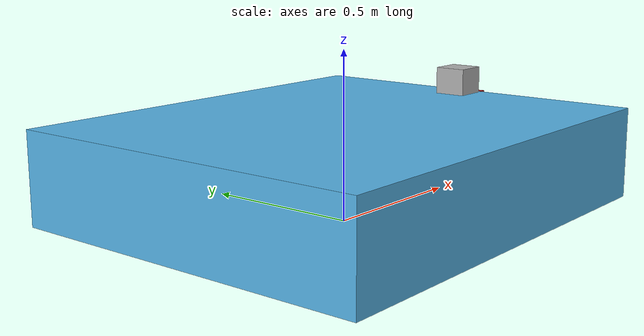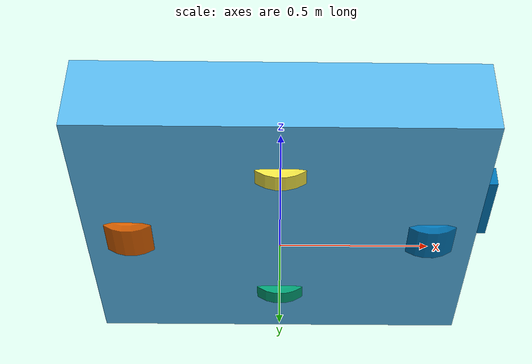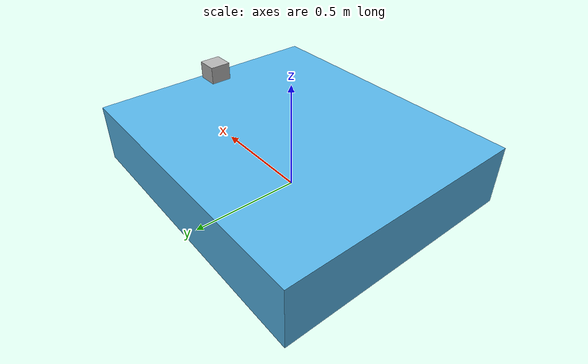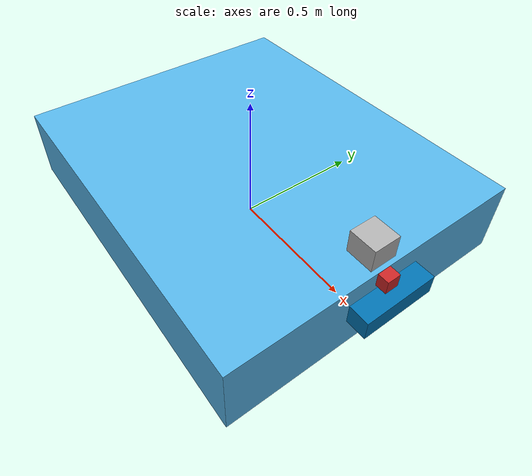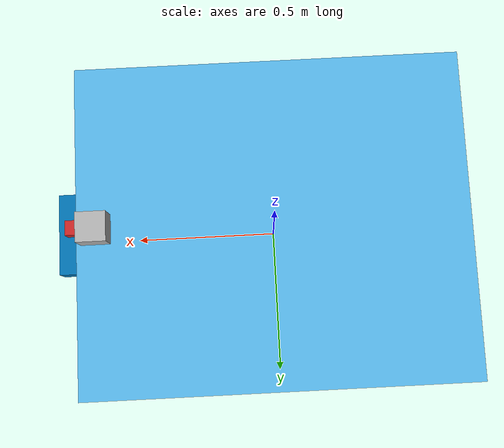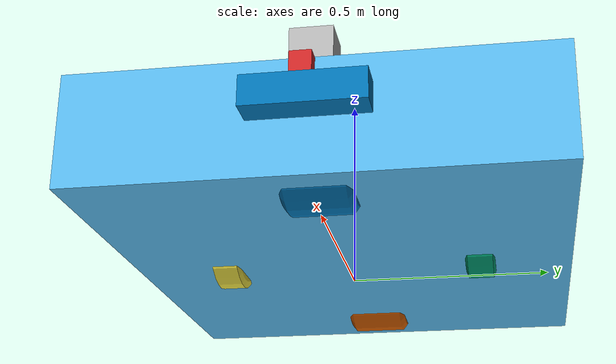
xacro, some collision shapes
<?xml version="1.0"?>
        <!--
            - Base      : fred
            - 3d Sensor : hokuyo_kinect
        -->
<robot name="fred_robot" xmlns:xacro="http://ros.org/wiki/xacro">

  <xacro:include filename="$(find followbot)/urdf/fred/common_properties.urdf.xacro"/>
  <xacro:include filename="$(find followbot)/urdf/fred/fred_properties.urdf.xacro"/>
  <xacro:include filename="$(find followbot)/urdf/fred/fred.urdf.xacro" />
  <xacro:include filename="$(find followbot)/urdf/sensors/fred_kinect.urdf.xacro"/>
  <xacro:include filename="$(find followbot)/urdf/sensors/fred_hokuyo.urdf.xacro"/>
  <xacro:include filename="$(find followbot)/urdf/sensors/fred_monocular_camera.urdf.xacro"/>
  <xacro:include filename="$(find followbot)/urdf/fred/fred_gazebo.urdf.xacro" />

  <xacro:fred/>
  <xacro:sensor_kinect  parent="base_link"/>
  <xacro:sensor_hokuyo  parent="base_link" />
  <xacro:sensor_monocular_camera  parent="base_link" />
</robot>

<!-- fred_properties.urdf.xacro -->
<robot xmlns:xacro="http://ros.org/wiki/xacro">
  <!--
    These properties must be observed by any machine
    that wants to be defined as a turtlebot. Refer
    to the REP for more details.

    http://www.ros.org/reps/rep-0119.html
   -->

	<xacro:property name="cam_px" value="0.72" />
	<xacro:property name="cam_pz" value="0.0" />
  <xacro:property name="cam_or" value="0"/>
  <xacro:property name="cam_op" value="${M_PI/2}"/>
  <xacro:property name="cam_oy" value="0"/>
	<xacro:property name="mono_cam_px" value="0.68" />
	<xacro:property name="mono_cam_pz" value="0.11" />
  <xacro:property name="mono_cam_or" value="0"/>
  <xacro:property name="mono_cam_op" value="0"/>
  <xacro:property name="mono_cam_oy" value="0"/>
	<xacro:property name="laser_px" value="0.6" />
	<xacro:property name="laser_py" value="0" />
	<xacro:property name="laser_pz" value="0.172" />
  <xacro:property name="laser_or" value="0"/>
  <xacro:property name="laser_op" value="0"/>
  <xacro:property name="laser_oy" value="0"/>
</robot>

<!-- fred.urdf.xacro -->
<robot name="fred" xmlns:xacro="http://ros.org/wiki/xacro">
  <xacro:include filename="$(find followbot)/urdf/fred/common_properties.urdf.xacro"/>
  <xacro:include filename="$(find followbot)/urdf/fred/fred_base_gazebo.urdf.xacro"/>

  <!-- Fred -->
  <xacro:macro name="fred">
    <link name="base_footprint"/>
    <joint name="base_joint" type="fixed">
      <origin xyz="0 0 ${0.137+0.03}" rpy="0 0 0" />
      <parent link="base_footprint"/>
      <child link="base_link" />
    </joint>

    <!-- Chassis -->
    <link name="base_link">
      <visual>
        <geometry>
          <!--box size="1.328 1.125 0.274"/-->
          <mesh filename="package://followbot/meshes/fred/fred_body.dae" />
        </geometry>
      </visual>
      <collision>
        <geometry>
          <box size="1.328 1.125 0.274"/>
        </geometry>
      </collision>
      <inertial>
        <mass value="206.0"/>
        <inertia ixx="23.0154" iyy="31.5637" izz="52.0014" ixy="0" ixz="0" iyz="0"/>
      </inertial>
    </link>

      <!-- left wheel -->
    <joint name="wheel_left_joint" type="continuous">
      <axis xyz="0 0 1"/>
      <parent link="base_link"/>
      <child link="wheel_left_link"/>
      <origin rpy="${-M_PI/2} 0 0" xyz="0 0.331 -0.04"/>
    </joint>
    <link name="wheel_left_link">
      <visual>
        <geometry>
          <!--cylinder length="0.0762" radius="0.127"/-->
          <mesh filename="package://followbot/meshes/fred/fred_wheel.dae" />
        </geometry>
      </visual>
      <collision>
        <geometry>
          <cylinder length="0.0762" radius="0.127"/>
        </geometry>
      </collision>
      <inertial>
        <mass value="5"/>
        <inertia ixx="0.0226" iyy="0.0226" izz="0.0403" ixy="0" ixz="0" iyz="0"/>
      </inertial>
    </link>

    <!-- Right wheel -->
    <joint name="wheel_right_joint" type="continuous">
      <axis xyz="0 0 1"/>
      <parent link="base_link"/>
      <child link="wheel_right_link"/>
      <origin rpy="${-M_PI/2} 0 0" xyz="0 -0.331 -0.04"/>
    </joint>
    <link name="wheel_right_link">
      <visual>
        <geometry>
          <!--cylinder length="0.0762" radius="0.127"/-->
          <mesh filename="package://followbot/meshes/fred/fred_wheel.dae" />
        </geometry>
      </visual>
      <collision>
        <geometry>
          <cylinder length="0.0762" radius="0.127"/>
        </geometry>
      </collision>
      <inertial>
        <mass value="5"/>
        <inertia ixx="0.0226" iyy="0.0226" izz="0.0403" ixy="0" ixz="0" iyz="0"/>
      </inertial>
    </link>

    <!-- Front caster -->
    <joint name="caster_front_joint" type="fixed">
      <axis xyz="0 0 1"/>
      <parent link="base_link"/>
      <child link="caster_front_link"/>
      <origin rpy="${-M_PI/2} 0 0" xyz="0.515 0 -0.038"/>
    </joint>
    <link name="caster_front_link">
      <visual>
        <geometry>
          <!--cylinder length="0.165" radius="0.127"/-->
          <mesh filename="package://followbot/meshes/fred/caster_wheel.dae" />
        </geometry>
        <!--material name="black"/-->
      </visual>
      <collision>
        <geometry>
          <cylinder length="0.165" radius="0.127"/>
        </geometry>
      </collision>
      <inertial>
        <mass value="5"/>
        <inertia ixx="0.0315" iyy="0.0315" izz="0.0403" ixy="0" ixz="0" iyz="0"/>
      </inertial>
    </link>

    <!-- Back caster -->
    <joint name="caster_back_joint" type="fixed">
      <axis xyz="0 0 1"/>
      <parent link="base_link"/>
      <child link="caster_back_link"/>
      <origin rpy="${-M_PI/2} 0 0" xyz="-0.515 0 -0.038"/>
    </joint>
    <link name="caster_back_link">
      <visual>
        <geometry>
          <!--cylinder length="0.165" radius="0.127"/-->
          <mesh filename="package://followbot/meshes/fred/caster_wheel.dae" />
        </geometry>
        <!--material name="black"/-->
      </visual>
      <collision>
        <geometry>
          <cylinder length="0.165" radius="0.127"/>
        </geometry>
      </collision>
      <inertial>
        <mass value="5"/>
        <inertia ixx="0.0315" iyy="0.0315" izz="0.0403" ixy="0" ixz="0" iyz="0"/>
      </inertial>
    </link>

    <!-- Fred's sensors -->
    <joint name="gyro_joint" type="fixed">
      <axis xyz="0 1 0"/>
      <origin xyz="0.664 0.5 -0.137" rpy="0 0 0"/>
      <parent link="base_link"/>
      <child link="gyro_link"/>
    </joint>
    <link name="gyro_link">
      <inertial>
        <mass value="0.001"/>
        <origin xyz="0 0 0" rpy="0 0 0"/>
        <inertia ixx="0.0001" ixy="0" ixz="0"
                 iyy="0.000001" iyz="0"
                 izz="0.0001"/>
      </inertial>
    </link>

    <joint name="cliff_sensor_left_joint" type="fixed">
      <origin xyz="0.664 0.5625 -0.137" rpy="0 ${M_PI/2} 0" />
      <parent link="base_link"/>
      <child link="cliff_sensor_left_link" />
    </joint>
    <link name="cliff_sensor_left_link">
      <inertial>
        <mass value="0.0001" />
        <origin xyz="0 0 0" />
        <inertia ixx="0.0001" ixy="0.0" ixz="0.0"
                 iyy="0.0001" iyz="0.0"
                 izz="0.0001" />
      </inertial>
    </link>

    <joint name="cliff_sensor_right_joint" type="fixed">
      <origin xyz="0.664 -0.5625 -0.137" rpy="0 ${M_PI/2} 0" />
      <parent link="base_link"/>
      <child link="cliff_sensor_right_link" />
    </joint>
    <link name="cliff_sensor_right_link">
      <inertial>
        <mass value="0.0001" />
        <origin xyz="0 0 0" />
        <inertia ixx="0.0001" ixy="0.0" ixz="0.0"
                 iyy="0.0001" iyz="0.0"
                 izz="0.0001" />
      </inertial>
    </link>

    <joint name="cliff_sensor_front_joint" type="fixed">
      <origin xyz="0.664 0.00 -0.137" rpy="0 ${M_PI/2} 0" />
      <parent link="base_link"/>
      <child link="cliff_sensor_front_link" />
    </joint>
    <link name="cliff_sensor_front_link">
      <inertial>
        <mass value="0.0001" />
        <origin xyz="0 0 0" />
        <inertia ixx="0.0001" ixy="0.0" ixz="0.0"
                 iyy="0.0001" iyz="0.0"
                 izz="0.0001" />
      </inertial>
    </link>

    <!-- Fred Gazebo simulation details -->
    <xacro:fred_sim/>

  </xacro:macro>
</robot>

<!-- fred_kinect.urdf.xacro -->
<robot name="sensor_kinect" xmlns:xacro="http://ros.org/wiki/xacro">
  <xacro:include filename="$(find followbot)/urdf/fred/fred_gazebo.urdf.xacro"/>
  <xacro:include filename="$(find followbot)/urdf/fred/fred_properties.urdf.xacro"/>

  <xacro:property name="kinect_cam_py" value="-0.0125"/>
  <!-- Parameterised in part by the values in turtlebot_properties.urdf.xacro -->
  <xacro:macro name="sensor_kinect" params="parent">
    <joint name="camera_rgb_joint" type="fixed">
      <origin xyz="${cam_px} ${kinect_cam_py} ${cam_pz}" rpy="${cam_or} ${cam_op} ${cam_oy}"/>
      <parent link="${parent}"/>
      <child link="camera_rgb_frame" />
    </joint>
    <link name="camera_rgb_frame"/>

    <joint name="camera_rgb_optical_joint" type="fixed">
      <origin xyz="0 0 0" rpy="${-M_PI/2} 0 ${-M_PI/2}" />
      <parent link="camera_rgb_frame" />
      <child link="camera_rgb_optical_frame" />
    </joint>
    <link name="camera_rgb_optical_frame"/>

    <joint name="camera_joint" type="fixed">
      <origin xyz="-0.031 ${-kinect_cam_py} -0.016" rpy="0 0 0"/>
      <parent link="camera_rgb_frame"/>
      <child link="camera_link"/>
    </joint>
      <link name="camera_link">
      <visual>
       <origin xyz="0 0 0" rpy="0 0 ${M_PI/2}"/>
        <geometry>
         <mesh filename="package://followbot/meshes/sensors/kinect.dae"/>
        </geometry>
      </visual>
  	  <collision>
        <origin xyz="0.0 0.0 0.0" rpy="0 0 0"/>
  	    <geometry>
  	      <box size="0.07271 0.27794 0.073"/>
  	    </geometry>
  	  </collision>
      <inertial>
        <mass value="0.564" />
        <origin xyz="0 0 0" />
        <inertia ixx="0.003881243" ixy="0.0" ixz="0.0"
                 iyy="0.000498940" iyz="0.0"
                 izz="0.003879257" />
      </inertial>
    </link>

	<joint name="camera_depth_joint" type="fixed">
	  <origin xyz="0 ${2 * -kinect_cam_py} 0" rpy="0 0 0" />
	  <parent link="camera_rgb_frame" />
	  <child link="camera_depth_frame" />
	</joint>
	<link name="camera_depth_frame"/>

	<joint name="camera_depth_optical_joint" type="fixed">
	  <origin xyz="0 0 0" rpy="${-M_PI/2} 0 ${-M_PI/2}" />
	  <parent link="camera_depth_frame" />
	  <child link="camera_depth_optical_frame" />
	</joint>
	<link name="camera_depth_optical_frame"/>

	<!-- Kinect sensor for simulation -->
	<xacro:fred_sim_3dsensor/>
  </xacro:macro>
</robot>

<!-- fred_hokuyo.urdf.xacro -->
<!-- script_version=1.1 -->
<robot name="sensor_hokuyo" xmlns:xacro="http://ros.org/wiki/xacro">
  <xacro:include filename="$(find followbot)/urdf/fred/fred_gazebo.urdf.xacro"/>
  <xacro:include filename="$(find followbot)/urdf/fred/fred_properties.urdf.xacro"/>

  <!-- RPLidar 2D LIDAR -->
  <xacro:macro name="sensor_hokuyo" params="parent">
    <joint name="laser" type="fixed">
      <origin xyz="${laser_px} ${laser_py} ${laser_pz}" rpy="${laser_or} ${laser_op} ${laser_oy}" />
      <parent link="${parent}" />
      <child link="hokuyo_link" />
    </joint>

    <!-- Hokuyo Laser -->
    <link name="hokuyo_link">
    <collision>
      <origin xyz="0 0 0" rpy="0 0 0" />
      <geometry>
        <box size="0.1 0.1 0.1" />
      </geometry>
    </collision>

    <visual>
      <origin xyz="0 0 0" rpy="0 0 0" />
      <geometry>
        <mesh filename="package://followbot/meshes/sensors/hokuyo.dae" />
      </geometry>
    </visual>

    <inertial>
      <mass value="1e-5" />
      <origin xyz="0 0 0" rpy="0 0 0" />
      <inertia ixx="1e-6" ixy="0" ixz="0" iyy="1e-6" iyz="0" izz="1e-6" />
    </inertial>
    </link>

    <!-- Set up laser gazebo details -->
    <xacro:fred_sim_2dsensor/>
  </xacro:macro>
</robot>

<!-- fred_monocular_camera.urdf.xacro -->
<robot name="sensor_monocular_camera" xmlns:xacro="http://ros.org/wiki/xacro">
  <xacro:include filename="$(find followbot)/urdf/fred/fred_gazebo.urdf.xacro"/>
  <xacro:include filename="$(find followbot)/urdf/fred/fred_properties.urdf.xacro"/>

  <xacro:property name="mono_cam_py" value="-0.0125"/>
  <!-- Parameterised in part by the values in turtlebot_properties.urdf.xacro -->
  <xacro:macro name="sensor_monocular_camera" params="parent">
    <joint name="mono_camera_joint" type="fixed">
      <axis xyz="0 1 0" />
      <origin xyz="${mono_cam_px} ${mono_cam_py} ${mono_cam_pz}" rpy="${mono_cam_or} ${mono_cam_op} ${mono_cam_oy}"/>
      <parent link="${parent}"/>
      <child link="mono_camera_link"/>
    </joint>

    <joint name="mono_camera_optical_joint" type="fixed">
      <origin xyz="0 0 0" rpy="${-M_PI/2} 0 ${-M_PI/2}" />
      <parent link="mono_camera_link" />
      <child link="mono_camera_optical_frame" />
    </joint>
    <link name="mono_camera_optical_frame"/>

    <!-- Camera -->
    <link name="mono_camera_link">
      <collision>
        <origin xyz="0 0 0" rpy="0 0 0"/>
        <geometry>
          <box size="0.05 0.05 0.05"/>
        </geometry>
      </collision>

      <visual>
        <origin xyz="0 0 0" rpy="0 0 0"/>
        <geometry>
          <box size="0.05 0.05 0.05"/>
        </geometry>
        <material name="red"/>
      </visual>

      <inertial>
        <mass value="1e-5" />
        <origin xyz="0 0 0" rpy="0 0 0"/>
        <inertia ixx="1e-6" ixy="0" ixz="0" iyy="1e-6" iyz="0" izz="1e-6" />
      </inertial>
    </link>

    <!-- Monocular camera sensor for simulation -->
    <xacro:fred_sim_2dsensor_cam/>
  </xacro:macro>
</robot>
